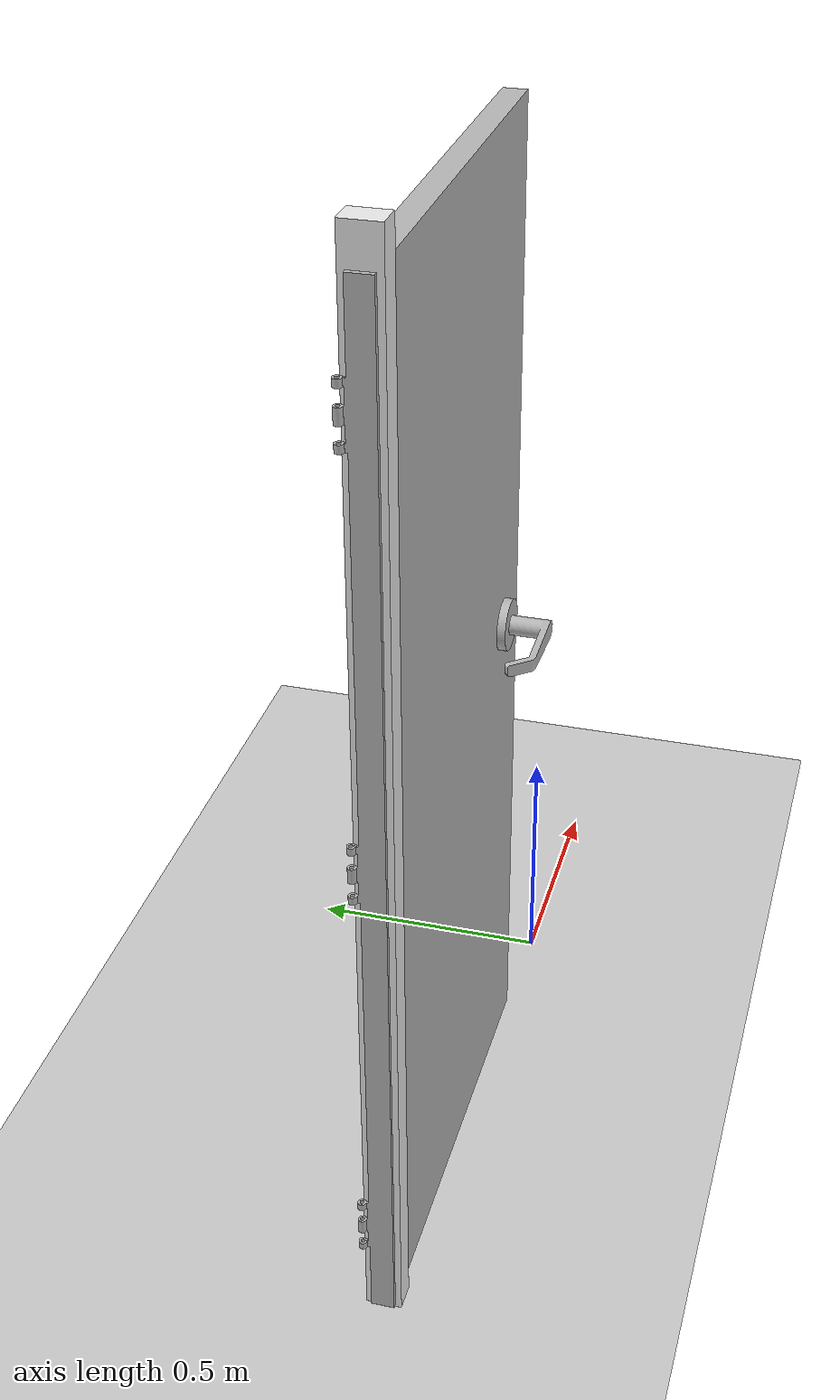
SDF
<sdf version="1.6">
 <world name="default">
  <model name="ground_plane">
   <static>1</static>
   <link name="link">
    <collision name="collision">
     <geometry><plane><normal>0 0 1</normal><size>100 100</size></plane></geometry>
     <surface><friction><ode><mu>100</mu><mu2>50</mu2></ode></friction></surface>
    </collision>
    <visual name="visual">
     <cast_shadows>0</cast_shadows>
     <geometry><plane><normal>0 0 1</normal><size>100 100</size></plane></geometry>
     <material>
      <script><uri>file://media/materials/scripts/gazebo.material</uri><name>Gazebo/Grey</name></script>
     </material>
    </visual>
   </link>
  </model>
  <model name="drc_practice_hinged_door">
   <link name="frame">
    <pose>0.06 -0.0005 0 0 -0 0</pose>
    <inertial>
     <pose>-0.025145 -0.03429 1.0541 0 -0 0</pose>
     <mass>19</mass>
     <inertia>
      <ixx>7.04458</ixx>
      <ixy>0</ixy>
      <ixz>0</ixz>
      <iyy>7.04114</iyy>
      <iyz>0</iyz>
      <izz>0.0114511</izz>
     </inertia>
    </inertial>
    <collision name="collision_2">
     <pose>-0.025145 -0.03429 1.0541 0 -0 0</pose>
     <geometry><box><size>0.05029 0.06858 2.1082</size></box></geometry>
    </collision>
    <visual name="visual">
     <pose>-0.025145 -0.03429 1.0541 0 -0 0</pose>
     <geometry><box><size>0.05029 0.06858 2.1082</size></box></geometry>
     <material>
      <script><uri>file://media/materials/scripts/gazebo.material</uri><name>Gazebo/White</name></script>
     </material>
    </visual>
   </link>
   <link name="door">
    <pose>-0 0 2.04 3.14159 -0 0</pose>
    <inertial>
     <mass>41.3256</mass>
     <pose>0.4569 0.0349 1.016 0 -0 0</pose>
     <inertia><ixx>14.2263</ixx><ixy>0</ixy><ixz>0</ixz><iyy>17.099</iyy><iyz>0</iyz><izz>2.88626</izz></inertia>
    </inertial>
    <collision name="collision">
     <pose>0.4569 0.0349 1.016 0 -0 0</pose>
     <geometry><box><size>0.9144 0.04445 2.032</size></box></geometry>
    </collision>
    <visual name="visual">
     <pose>0 -0.06858 0 0 -0 0</pose>
     <geometry><mesh><uri>model://hinged_door/meshes/door.dae</uri><scale>1 1 1</scale></mesh></geometry>
    </visual>
   </link>
   <link name="handles">
    <pose>0.8144 0 1.05 3.14159 0.001593 3.14159</pose>
    <inertial>
     <pose>0 -0.035 0 0 -0 0</pose>
     <mass>2</mass>
     <inertia>
      <ixx>0.0110115</ixx>
      <ixy>-0</ixy>
      <ixz>-0.00647057</ixz>
      <iyy>0.0190181</iyy>
      <iyz>0</iyz>
      <izz>0.00824372</izz>
     </inertia>
    </inertial>
    <collision name="handle1_collision">
     <pose>0.015 -0.015 0 -1.57 0 0</pose>
     <geometry><mesh><uri>model://door_handle/meshes/handle.dae</uri><scale>1 1 1</scale></mesh></geometry>
    </collision>
    <visual name="handle1_visual">
     <pose>0.015 -0.015 0 -1.57 0 0</pose>
     <geometry><mesh><uri>model://door_handle/meshes/handle.dae</uri><scale>1 1 1</scale></mesh></geometry>
    </visual>
    <collision name="handle2_collision">
     <pose>0.015 -0.055 0 1.57 -0 0</pose>
     <geometry><mesh><uri>model://door_handle/meshes/handle.dae</uri><scale>1 1 1</scale></mesh></geometry>
    </collision>
    <visual name="handle2_visual">
     <pose>0.015 -0.055 0 1.57 -0 0</pose>
     <geometry><mesh><uri>model://door_handle/meshes/handle.dae</uri><scale>1 1 1</scale></mesh></geometry>
    </visual>
   </link>
   <joint name="handle" type="revolute">
    <parent>door</parent>
    <child>handles</child>
    <pose>0.015 0 0 0 -0 0</pose>
    <axis>
     <xyz>0 1 0</xyz>
     <limit><lower>-1.58</lower><upper>0</upper></limit>
     <dynamics>
      <damping>1</damping>
      <friction>10</friction>
      <spring_reference>0</spring_reference>
      <spring_stiffness>0</spring_stiffness>
     </dynamics>
     <use_parent_model_frame>1</use_parent_model_frame>
    </axis>
    <physics><ode><cfm_damping>1</cfm_damping><limit><cfm>0</cfm><erp>0.2</erp></limit></ode></physics>
   </joint>
   <joint name="hinge" type="revolute">
    <parent>frame</parent>
    <child>door</child>
    <axis>
     <xyz>0 0 1</xyz>
     <limit><lower>-1.58</lower><upper>0</upper></limit>
     <dynamics>
      <damping>1</damping>
      <friction>1</friction>
      <spring_reference>0</spring_reference>
      <spring_stiffness>0</spring_stiffness>
     </dynamics>
     <use_parent_model_frame>1</use_parent_model_frame>
    </axis>
    <physics><ode><cfm_damping>1</cfm_damping><limit><cfm>0</cfm><erp>0.2</erp></limit></ode></physics>
   </joint>
   <joint name="world_joint" type="revolute">
    <child>frame</child>
    <parent>world</parent>
    <axis>
     <limit><lower>0</lower><upper>0</upper></limit>
     <xyz>0 1 0</xyz>
     <dynamics>
      <damping>1</damping>
      <spring_reference>0</spring_reference>
      <spring_stiffness>0</spring_stiffness>
     </dynamics>
     <use_parent_model_frame>1</use_parent_model_frame>
    </axis>
    <physics><ode><cfm_damping>1</cfm_damping><limit><cfm>0</cfm><erp>0.2</erp></limit></ode></physics>
   </joint>
   <pose>-1.13014 0.065249 0 0 -0 0</pose>
  </model>
 </world>
</sdf>
